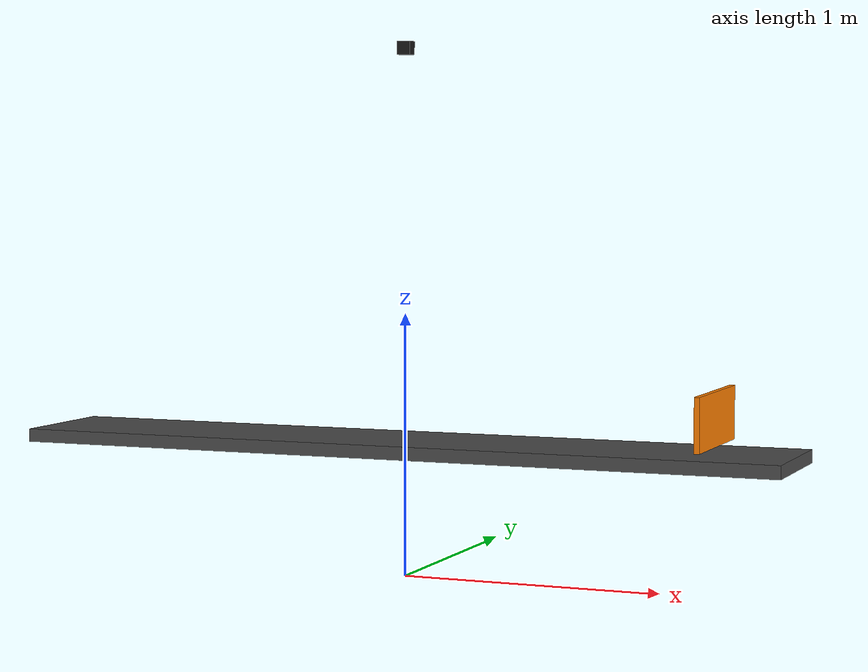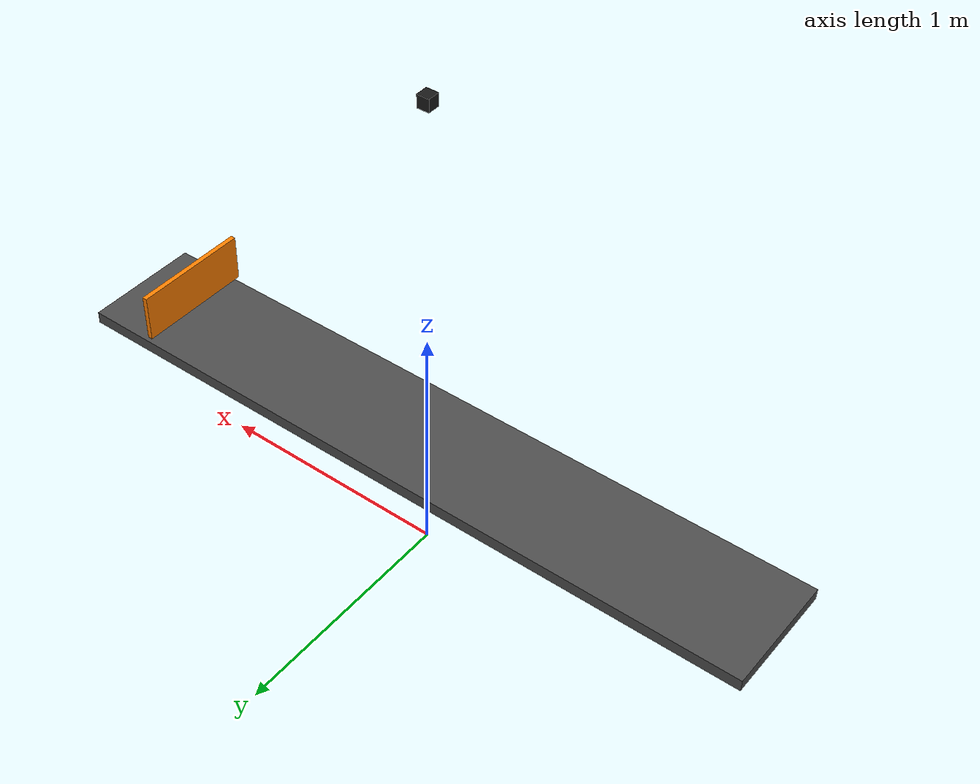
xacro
<?xml version="1.0"?>
<robot name="conveyor_system" xmlns:xacro="http://www.ros.org/wiki/xacro">

  <!-- Base link (world frame reference) -->
  <link name="world"/>

  <!-- Conveyor base frame -->
  <link name="conveyor_base">
    <visual>
      <geometry>
        <box size="3.0 0.5 0.05"/>
      </geometry>
      <material name="dark_grey">
        <color rgba="0.3 0.3 0.3 1.0"/>
      </material>
    </visual>
    <collision>
      <geometry>
        <box size="3.0 0.5 0.05"/>
      </geometry>
    </collision>
    <inertial>
      <mass value="10.0"/>
      <inertia ixx="1.0" ixy="0" ixz="0"
               iyy="1.0" iyz="0" izz="1.0"/>
    </inertial>
  </link>

  <joint name="world_to_conveyor" type="fixed">
    <parent link="world"/>
    <child link="conveyor_base"/>
    <origin xyz="0 0 0.5" rpy="0 0 0"/>
  </joint>

  <!-- Camera mount frame -->
  <link name="camera_link">
    <visual>
      <geometry>
        <box size="0.05 0.05 0.05"/>
      </geometry>
      <material name="black">
        <color rgba="0.1 0.1 0.1 1.0"/>
      </material>
    </visual>
  </link>

  <joint name="conveyor_to_camera" type="fixed">
    <parent link="conveyor_base"/>
    <child link="camera_link"/>
    <origin xyz="0 0 1.5" rpy="0 1.5708 0"/>
  </joint>

  <!-- Sorting gate frame -->
  <link name="sorting_gate">
    <visual>
      <geometry>
        <box size="0.02 0.5 0.2"/>
      </geometry>
      <material name="orange">
        <color rgba="1.0 0.5 0.0 1.0"/>
      </material>
    </visual>
    <collision>
      <geometry>
        <box size="0.02 0.5 0.2"/>
      </geometry>
    </collision>
    <inertial>
      <mass value="0.5"/>
      <inertia ixx="0.01" ixy="0" ixz="0"
               iyy="0.01" iyz="0" izz="0.01"/>
    </inertial>
  </link>

  <joint name="conveyor_to_gate" type="revolute">
    <parent link="conveyor_base"/>
    <child link="sorting_gate"/>
    <origin xyz="1.2 0 0.15" rpy="0 0 0"/>
    <axis xyz="0 0 1"/>
    <limit lower="-1.57" upper="1.57" effort="10" velocity="2.0"/>
  </joint>

</robot>
